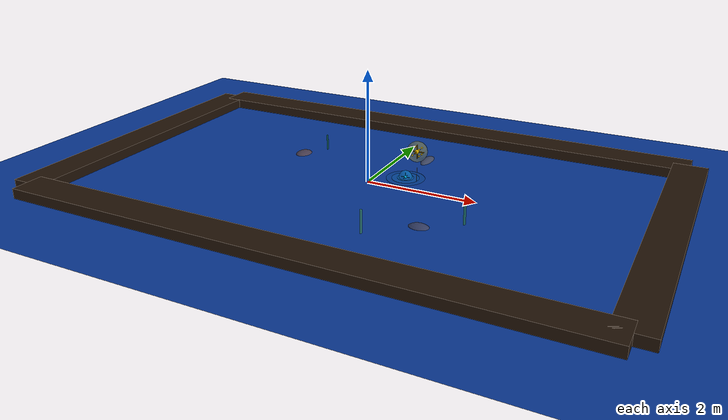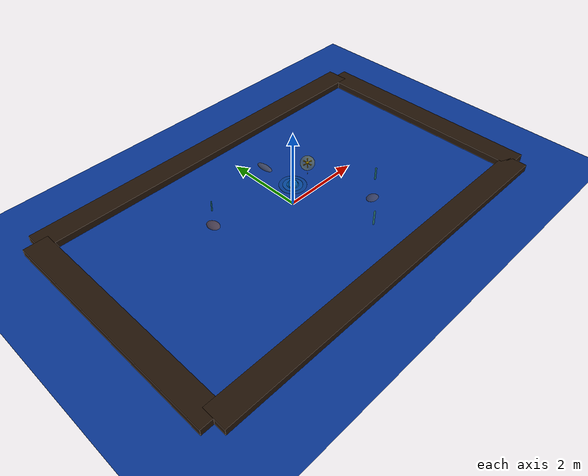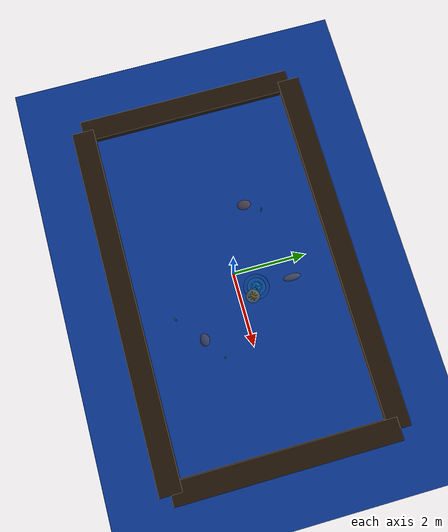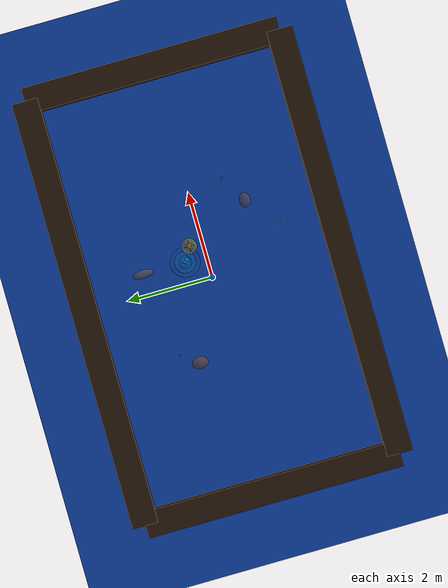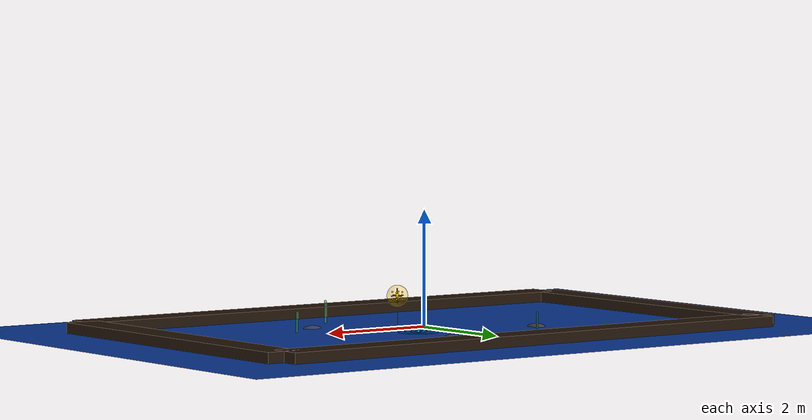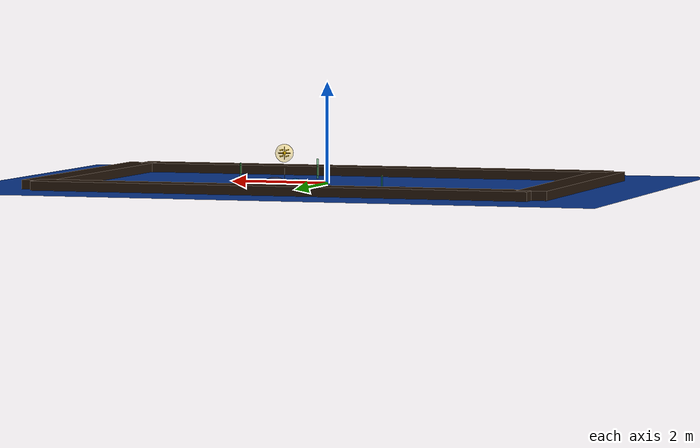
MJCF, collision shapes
<mujoco model="CF2 River Scene">
  <include file="obstacles.xml" />
  <include file="cf2_with_pendulum.xml" />
  <statistic center="0 0 0.1" extent="0.2" meansize=".05" />

  <visual>
    <headlight diffuse="0.8 0.9 1.0" ambient="0.4 0.5 0.6" specular="0.3 0.3 0.4" />
    <rgba haze="0.7 0.85 1.0 1" />
    <global azimuth="-30" elevation="-15" ellipsoidinertia="true" />
  </visual>

  <asset>
    <!-- River/Water Skybox -->
    <texture type="skybox" builtin="gradient"
             rgb1="0.6 0.8 1.0" rgb2="0.2 0.4 0.7"
             width="512" height="3072" />

    <!-- Water Surface Texture -->
    <texture type="2d" name="water_surface" builtin="gradient"
             rgb1="0.1 0.3 0.6" rgb2="0.2 0.5 0.8"
             width="512" height="512" />

    <!-- Water Ripples Texture -->
    <texture type="2d" name="water_ripples" builtin="checker"
             rgb1="0.15 0.4 0.7" rgb2="0.25 0.5 0.8"
             markrgb="0.3 0.6 0.9" mark="edge"
             width="100" height="100" />

    <!-- River Bank Texture -->
    <texture type="2d" name="riverbank" builtin="checker"
             rgb1="0.4 0.3 0.2" rgb2="0.3 0.25 0.15"
             markrgb="0.5 0.4 0.3" mark="cross"
             width="200" height="200" />

    <!-- Water Material with High Reflectance -->
    <material name="water_material"
              texture="water_ripples"
              texuniform="true"
              texrepeat="8 8"
              reflectance="0.7"
              rgba="0.2 0.5 0.8 0.85"
              specular="0.8"
              shininess="0.9" />

    <!-- Deep Water Material -->
    <material name="deep_water"
              texture="water_surface"
              texuniform="true"
              texrepeat="3 3"
              reflectance="0.6"
              rgba="0.1 0.3 0.6 0.9"
              specular="0.7"
              shininess="0.8" />

    <!-- River Bank Material -->
    <material name="bank_material"
              texture="riverbank"
              texuniform="true"
              texrepeat="4 4"
              reflectance="0.1"
              rgba="0.4 0.3 0.2 1.0" />
  </asset>

  <worldbody>
    <!-- Enhanced lighting for water environment -->
    <light pos="0 0 2.0" dir="0 0 -1" directional="true"
           diffuse="0.9 0.95 1.0" specular="0.8 0.9 1.0" />

    <!-- Additional ambient lighting to simulate sky reflection -->
    <light pos="2 2 1.5" dir="-0.5 -0.5 -1" directional="false"
           diffuse="0.3 0.4 0.5" specular="0.2 0.3 0.4" />

    <!-- Main water surface - NO COLLISION -->
    <geom name="water_surface" size="0 0 0.02" type="plane"
          material="water_material" pos="0 0 -0.02"
          contype="0" conaffinity="0" />

    <!-- Deeper water layer for visual depth - NO COLLISION -->
    <geom name="deep_water_layer" size="0 0 0.01" type="plane"
          material="deep_water" pos="0 0 -0.05"
          contype="0" conaffinity="0" />

    <!-- Invisible collision floor (simple plane for physics) -->
    <geom name="collision_floor" size="0 0 0.01" type="plane"
          pos="0 0 -0.1" rgba="0 0 0 0" />

    <!-- River banks - VISUAL ONLY, NO COLLISION -->
    <geom name="north_bank" type="box" size="5 0.3 0.1"
          pos="0 3 0.05" material="bank_material"
          contype="0" conaffinity="0" />
    <geom name="south_bank" type="box" size="5 0.3 0.1"
          pos="0 -3 0.05" material="bank_material"
          contype="0" conaffinity="0" />
    <geom name="east_bank" type="box" size="0.3 3 0.1"
          pos="5 0 0.05" material="bank_material"
          contype="0" conaffinity="0" />
    <geom name="west_bank" type="box" size="0.3 3 0.1"
          pos="-5 0 0.05" material="bank_material"
          contype="0" conaffinity="0" />

    <!-- Underwater rocks/features - VISUAL ONLY, NO COLLISION -->
    <geom name="underwater_rock1" type="ellipsoid" size="0.2 0.15 0.1"
          pos="1.5 -1.2 -0.08" rgba="0.3 0.3 0.4 0.8"
          contype="0" conaffinity="0" />
    <geom name="underwater_rock2" type="ellipsoid" size="0.15 0.2 0.08"
          pos="-1.8 0.8 -0.06" rgba="0.4 0.3 0.3 0.8"
          contype="0" conaffinity="0" />
    <geom name="underwater_rock3" type="ellipsoid" size="0.1 0.25 0.06"
          pos="0.5 1.5 -0.04" rgba="0.35 0.35 0.4 0.8"
          contype="0" conaffinity="0" />

    <!-- Water plants/seaweed effect - VISUAL ONLY, NO COLLISION -->
    <geom name="water_plant1" type="capsule" size="0.02"
          fromto="2.1 -0.8 -0.1  2.1 -0.8 0.3"
          rgba="0.2 0.6 0.3 0.6"
          contype="0" conaffinity="0" />
    <geom name="water_plant2" type="capsule" size="0.015"
          fromto="-1.5 1.2 -0.08  -1.5 1.2 0.25"
          rgba="0.1 0.5 0.2 0.6"
          contype="0" conaffinity="0" />
    <geom name="water_plant3" type="capsule" size="0.02"
          fromto="0.8 -1.8 -0.06  0.8 -1.8 0.35"
          rgba="0.3 0.7 0.4 0.6"
          contype="0" conaffinity="0" />
  </worldbody>
</mujoco>

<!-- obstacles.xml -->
<mujoco model="obstacles">
   <asset>
      <!-- Water collection marker materials -->
      <material name="water_marker_center" rgba="0.0 0.8 1.0 1.0"/>      <!-- Cyan for water level -->
      <material name="water_marker_ring" rgba="0.0 0.6 0.8 0.8"/>
      <material name="water_marker_cross" rgba="0.0 0.4 0.6 1.0"/>
      <material name="water_marker_glow" rgba="0.0 0.8 1.0 0.3"/>

      <!-- Lift marker materials -->
      <material name="lift_marker_center" rgba="1.0 0.8 0.0 1.0"/>        <!-- Gold for lift position -->
      <material name="lift_marker_ring" rgba="0.8 0.6 0.0 0.8"/>
      <material name="lift_marker_cross" rgba="0.6 0.4 0.0 1.0"/>
      <material name="lift_marker_glow" rgba="1.0 0.8 0.0 0.3"/>
   </asset>

   <worldbody>
      <body name="obstacles">
      </body>

      <!-- ===== WATER COLLECTION MARKER (Phase 1) ===== -->
      <body name="water_marker" pos="0.5 0.5 0.0">
         <!-- Center sphere - at water surface -->
         <geom name="water_center_sphere" type="sphere" size="0.025"
               material="water_marker_center" group="2" contype="0" conaffinity="0"/>

         <!-- Outer ring - floating on water surface -->
         <geom name="water_ring_outer" type="cylinder" size="0.06 0.003"
               material="water_marker_ring" group="2" contype="0" conaffinity="0"/>

         <!-- Cross bars - floating above water -->
         <geom name="water_cross_x" type="capsule"
               fromto="-0.08 0 0  0.08 0 0" size="0.005"
               material="water_marker_cross" group="2" contype="0" conaffinity="0"/>
         <geom name="water_cross_y" type="capsule"
               fromto="0 -0.08 0  0 0.08 0" size="0.005"
               material="water_marker_cross" group="2" contype="0" conaffinity="0"/>
         <geom name="water_cross_z" type="capsule"
               fromto="0 0 -0.08  0 0 0.08" size="0.005"
               material="water_marker_cross" group="2" contype="0" conaffinity="0"/>

         <!-- Glow effect - extends into water -->
         <geom name="water_glow" type="sphere" size="0.12"
               material="water_marker_glow" group="2" contype="0" conaffinity="0"/>

         <!-- Water ripple effects around floating target -->
         <geom name="water_ripple1" type="cylinder" size="0.15 0.001" pos="0 0 -0.01"
               rgba="0.0 0.8 1.0 0.3" group="2" contype="0" conaffinity="0"/>
         <geom name="water_ripple2" type="cylinder" size="0.25 0.001" pos="0 0 -0.015"
               rgba="0.0 0.6 0.8 0.2" group="2" contype="0" conaffinity="0"/>
         <geom name="water_ripple3" type="cylinder" size="0.35 0.001" pos="0 0 -0.02"
               rgba="0.0 0.4 0.6 0.1" group="2" contype="0" conaffinity="0"/>
      </body>

      <!-- ===== LIFT MARKER (Phase 2) ===== -->
      <body name="lift_marker" pos="0.8 0.3 0.6">
         <!-- Center sphere - much higher above water -->
         <geom name="lift_center_sphere" type="sphere" size="0.035"
               material="lift_marker_center" group="2" contype="0" conaffinity="0"/>

         <!-- Outer ring - lift position -->
         <geom name="lift_ring_outer" type="cylinder" size="0.08 0.005"
               material="lift_marker_ring" group="2" contype="0" conaffinity="0"/>

         <!-- Cross bars - lift position -->
         <geom name="lift_cross_x" type="capsule"
               fromto="-0.12 0 0  0.12 0 0" size="0.008"
               material="lift_marker_cross" group="2" contype="0" conaffinity="0"/>
         <geom name="lift_cross_y" type="capsule"
               fromto="0 -0.12 0  0 0.12 0" size="0.008"
               material="lift_marker_cross" group="2" contype="0" conaffinity="0"/>
         <geom name="lift_cross_z" type="capsule"
               fromto="0 0 -0.12  0 0 0.12" size="0.008"
               material="lift_marker_cross" group="2" contype="0" conaffinity="0"/>

         <!-- Glow effect - lift position -->
         <geom name="lift_glow" type="sphere" size="0.18"
               material="lift_marker_glow" group="2" contype="0" conaffinity="0"/>

         <!-- Corner markers for better visibility -->
         <geom name="lift_corner1" type="sphere" size="0.015" pos="0.06 0.06 0.06"
               material="lift_marker_center" group="2" contype="0" conaffinity="0"/>
         <geom name="lift_corner2" type="sphere" size="0.015" pos="-0.06 0.06 0.06"
               material="lift_marker_center" group="2" contype="0" conaffinity="0"/>
         <geom name="lift_corner3" type="sphere" size="0.015" pos="0.06 -0.06 0.06"
               material="lift_marker_center" group="2" contype="0" conaffinity="0"/>
         <geom name="lift_corner4" type="sphere" size="0.015" pos="-0.06 -0.06 0.06"
               material="lift_marker_center" group="2" contype="0" conaffinity="0"/>
         <geom name="lift_corner5" type="sphere" size="0.015" pos="0.06 0.06 -0.06"
               material="lift_marker_center" group="2" contype="0" conaffinity="0"/>
         <geom name="lift_corner6" type="sphere" size="0.015" pos="-0.06 0.06 -0.06"
               material="lift_marker_center" group="2" contype="0" conaffinity="0"/>
         <geom name="lift_corner7" type="sphere" size="0.015" pos="0.06 -0.06 -0.06"
               material="lift_marker_center" group="2" contype="0" conaffinity="0"/>
         <geom name="lift_corner8" type="sphere" size="0.015" pos="-0.06 -0.06 -0.06"
               material="lift_marker_center" group="2" contype="0" conaffinity="0"/>

         <!-- Longer connecting line between markers to show sequence -->
         <geom name="connection_line" type="capsule"
               fromto="0 0 -0.3  0 0 -0.55" size="0.004"
               rgba="0.8 0.8 0.8 0.6" group="2" contype="0" conaffinity="0"/>
      </body>

      <!-- ===== MISSION INDICATORS ===== -->
      <!-- Phase indicator text would go here if MuJoCo supported text -->

   </worldbody>
</mujoco>

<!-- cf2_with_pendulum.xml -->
<mujoco model="cf2">
  <option integrator="Euler" timestep="0.02" iterations="1" ls_iterations="5" solver="Newton">
    <flag eulerdamp="disable"/>
  </option>

  <compiler inertiafromgeom="false" meshdir="assets" autolimits="true"/>

  <default>
    <default class="cf2">
      <default class="visual">
        <geom group="2" type="mesh" contype="0" conaffinity="0"/>
      </default>
      <site group="5"/>
    </default>
  </default>

  <asset>
    <material name="polished_plastic" rgba="0.631 0.659 0.678 1"/>
    <material name="polished_gold" rgba="0.969 0.878 0.6 1"/>
    <material name="medium_gloss_plastic" rgba="0.109 0.184 0.0 1"/>
    <material name="propeller_plastic" rgba="0.792 0.820 0.933 1"/>
    <material name="white" rgba="1 1 1 1"/>
    <material name="body_frame_plastic" rgba="0.102 0.102 0.102 1"/>
    <material name="burnished_chrome" rgba="0.898 0.898 0.898 1"/>

    <!-- Bucket materials -->
    <material name="bucket_blue" rgba="0.2 0.4 0.8 0.9"/>
    <material name="bucket_rim" rgba="0.15 0.35 0.75 1"/>
    <material name="bucket_handle" rgba="0.6 0.6 0.6 1"/>

    <mesh file="cf2_0.obj"/>
    <mesh file="cf2_1.obj"/>
    <mesh file="cf2_2.obj"/>
    <mesh file="cf2_3.obj"/>
    <mesh file="cf2_4.obj"/>
    <mesh file="cf2_5.obj"/>
    <mesh file="cf2_6.obj"/>
  </asset>

  <worldbody>
    <body name="cf2" pos="0 0 0" childclass="cf2">
      <freejoint/>
      <inertial pos="0 0 0" mass="0.027" diaginertia="2.3951e-5 2.3951e-5 3.2347e-5"/>
      <camera name="track" pos="-1 0 .5" xyaxes="0 -1 0 1 0 2" mode="trackcom"/>
      <geom mesh="cf2_0" material="propeller_plastic" class="visual"/>
      <geom mesh="cf2_1" material="medium_gloss_plastic" class="visual"/>
      <geom mesh="cf2_2" material="polished_gold" class="visual"/>
      <geom mesh="cf2_3" material="polished_plastic" class="visual"/>
      <geom mesh="cf2_4" material="burnished_chrome" class="visual"/>
      <geom mesh="cf2_5" material="body_frame_plastic" class="visual"/>
      <geom mesh="cf2_6" material="white" class="visual"/>
      <site name="imu"/>
      <site name="actuation"/>

      <!-- ===== BEGIN BUCKET LOAD ===== -->
      <body name="bucket_hanger" pos="0 0 0">
        <!-- First hinge: alpha (swing in x-z), about Y axis -->
        <joint name="pendulum_alpha" type="hinge" axis="0 1 0"
               limited="false" damping="0" stiffness="0"/>
        <!-- Second hinge: beta (swing in y-z), about X axis -->
        <joint name="pendulum_beta" type="hinge" axis="1 0 0"
               limited="false" damping="0" stiffness="0"/>
        <!-- give it some mass & inertia -->
        <inertial pos="0 0 0" mass="1.0"
                  diaginertia="0.001 0.001 0.0001"/>
        <!-- a thin rod connecting to bucket handle -->
        <geom name="pendulum_rod" type="capsule"
              fromto="0 0 0   0 0 -0.165" size="0.003"
              rgba="0.7 0.2 0.2 1"/>

        <!-- Bucket construction -->
        <body name="bucket" pos="0 0 -0.25">
          <!-- Main bucket mass and inertia -->
          <inertial pos="0 0 -0.015" mass="0.5"
                    diaginertia="0.0012 0.0012 0.0006"/>

          <!-- Bucket bottom -->
          <geom name="bucket_bottom" type="cylinder"
                pos="0 0 -0.0195" size="0.0195 0.0015"
                material="bucket_blue"/>

          <!-- Bucket walls (using multiple cylinders to create hollow effect) -->
          <!-- Outer wall -->
          <geom name="bucket_wall_outer" type="cylinder"
                pos="0 0 -0.0105" size="0.021 0.0105"
                material="bucket_blue"/>

          <!-- Inner hollow space (invisible, for physics) -->
          <geom name="bucket_wall_inner" type="cylinder"
                pos="0 0 -0.0075" size="0.018 0.0075"
                material="bucket_blue" group="0" contype="0" conaffinity="0"/>

          <!-- Bucket rim -->
          <geom name="bucket_rim" type="cylinder"
                pos="0 0 0.003" size="0.0225 0.003"
                material="bucket_rim"/>

          <!-- Handle attachment points -->
          <geom name="handle_attach1" type="sphere"
                pos="0.021 0 0" size="0.003"
                material="bucket_handle"/>
          <geom name="handle_attach2" type="sphere"
                pos="-0.021 0 0" size="0.003"
                material="bucket_handle"/>

          <!-- Handle (wire-frame style using capsules) -->
          <!-- Connection point from pendulum rod to handle -->
          <geom name="rod_to_handle_connector" type="capsule"
                fromto="0 0 0.027  0 0 0.175" size="0.003"
                rgba="0.7 0.2 0.2 1"/>

          <!-- Main handle arc (approximated with multiple segments) -->
          <geom name="handle_seg1" type="capsule"
                fromto="0.021 0 0.0045  0.015 0 0.0255" size="0.0012"
                material="bucket_handle"/>
          <geom name="handle_seg2" type="capsule"
                fromto="0.015 0 0.0255  0.0075 0 0.030" size="0.0012"
                material="bucket_handle"/>
          <geom name="handle_seg3" type="capsule"
                fromto="0.0075 0 0.030  -0.0075 0 0.030" size="0.0012"
                material="bucket_handle"/>
          <geom name="handle_seg4" type="capsule"
                fromto="-0.0075 0 0.030  -0.015 0 0.0255" size="0.0012"
                material="bucket_handle"/>
          <geom name="handle_seg5" type="capsule"
                fromto="-0.015 0 0.0255  -0.021 0 0.0045" size="0.0012"
                material="bucket_handle"/>

          <!-- Handle grip (horizontal bar) - this is where the rod connects -->
          <geom name="handle_grip" type="capsule"
                fromto="-0.0105 0 0.027  0.0105 0 0.027" size="0.0015"
                material="bucket_handle"/>

          <!-- Optional: Add some visual detail lines on the bucket -->
          <geom name="bucket_detail1" type="capsule"
                fromto="0.012 0 -0.0075  -0.012 0 -0.0075" size="0.00045"
                rgba="0.15 0.3 0.6 0.8"/>
          <geom name="bucket_detail2" type="capsule"
                fromto="0 0.012 -0.0075  0 -0.012 -0.0075" size="0.00045"
                rgba="0.15 0.3 0.6 0.8"/>
        </body>
      </body>
      <!-- ===== END BUCKET LOAD ===== -->

    </body>
  </worldbody>

  <actuator>
    <motor class="cf2" ctrlrange="0 1" gear="0 0 1 0 0 0" site="actuation" name="body_thrust"/>
    <motor class="cf2" ctrlrange="-1 1" gear="0 0 0 0.001 0 0" site="actuation" name="x_moment"/>
    <motor class="cf2" ctrlrange="-1 1" gear="0 0 0 0 0.001 0" site="actuation" name="y_moment"/>
    <motor class="cf2" ctrlrange="-1 1" gear="0 0 0 0 0 0.001" site="actuation" name="z_moment"/>
  </actuator>

  <sensor>
    <gyro name="body_gyro" site="imu"/>
    <accelerometer name="body_linacc" site="imu"/>
    <framequat name="body_quat" objtype="site" objname="imu"/>
  </sensor>

  <keyframe>
    <key name="hover" qpos="0 0 0.1 1 0 0 0 0 0" ctrl="0.26487 0 0 0"/>
  </keyframe>
</mujoco>
